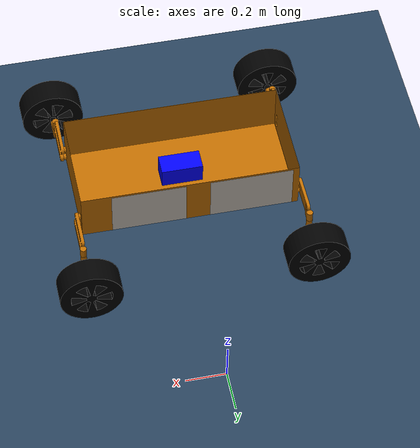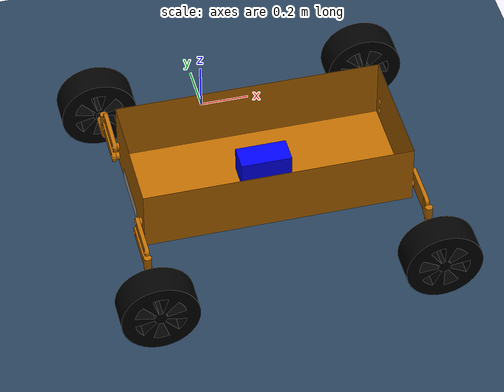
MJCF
<mujoco model="spaceroverMCL_scene">

  <include file="spaceroverMCL.xml"/>

  <statistic center="0 0 0.1" extent="0.8"/>

  <asset>
    <texture type="skybox" builtin="gradient" rgb1="0.3 0.5 0.7" rgb2="0 0 0" width="512" height="3072"/>
    <texture type="2d" name="groundplane" builtin="checker" mark="edge" rgb1="0.2 0.3 0.4" rgb2="0.1 0.2 0.3" markrgb="0.8 0.8 0.8" width="300" height="300"/>
    <material name="groundplane" texture="groundplane" texuniform="true" texrepeat="5 5" reflectance="0.2"/>
  </asset>

  <worldbody>
    <light pos="0 0 1.5" dir="0 0 -1" directional="true"/>
    <geom name="floor" size="0 0 0.05" type="plane" material="groundplane"/>
  </worldbody>
</mujoco>

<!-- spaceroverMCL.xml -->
<mujoco model="spaceroverMCL">
  <compiler angle="radian" meshdir="assets/meshes/" />

  <option timestep="0.0001" integrator="RK4" gravity = "0 0 -9.81" cone="elliptic" impratio="100">
    <flag sensornoise="enable" energy="enable" contact="enable" />
  </option>

  <default>
    <default class="spaceroverMCL">
      <geom friction="0.6" margin="0.001" condim="1"/>
      <joint axis="0 0 -1" armature="0.1" damping="2" stiffness="0" frictionloss="1"/>

      <default class="sus_joint">
        <joint range="-1.0472 1.0472"/>
      </default>

      <default class="steer_joint">
        <joint range="-1.0472 1.0472"/>
      </default>

      <default class="visual">
        <geom type="mesh" contype="0" conaffinity="0" group="2"/>
      </default>

      <default class= "collision">
        <geom group="3" priority="1" solimp="0.015 1 0.031" condim="6" friction="0.8 0.02 0.01"/>
      </default>

    </default>
  </default>

  <asset>
    <mesh name="trunk" file="base_link.STL"/>
    <mesh name="FL_bot_sus_bar" file="FL_bot_sus_bar.STL"/>
    <mesh name="FL_sus_cover" file="FL_sus_cover.STL"/>
    <mesh name="FL_steer_link" file="FL_steer_link.STL"/>
    <mesh name="FL_wheel" file="FL_wheel.STL"/>
    <mesh name="FR_bot_sus_bar" file="FR_bot_sus_bar.STL"/>
    <mesh name="FR_sus_cover" file="FR_sus_cover.STL"/>
    <mesh name="FR_steer_link" file="FR_steer_link.STL"/>
    <mesh name="FR_wheel" file="FR_wheel.STL"/>
    <mesh name="RL_bot_sus_bar" file="RL_bot_sus_bar.STL"/>
    <mesh name="RL_sus_cover" file="RL_sus_cover.STL"/>
    <mesh name="RL_steer_link" file="RL_steer_link.STL"/>
    <mesh name="RL_wheel" file="RL_wheel.STL"/>
    <mesh name="RR_bot_sus_bar" file="RR_bot_sus_bar.STL"/>
    <mesh name="RR_sus_cover" file="RR_sus_cover.STL"/>
    <mesh name="RR_steer_link" file="RR_steer_link.STL"/>
    <mesh name="RR_wheel" file="RR_wheel.STL"/>

    <texture name="Dgist" type="2d" file="Dgist_Logo.png"/>
    <texture name="Mcl" type="2d" file="Mcl_Logo.png"/>
    <texture name="Car_num" type="2d" file="Car_num.png"/>

    <material name="Dgist_Mark" texture="Dgist" reflectance="0.2" shininess="0.1"/>
    <material name="Mcl_Mark" texture="Mcl" reflectance="0.2" shininess="0.1"/>
    <material name="Car_num_Mark" texture="Car_num" reflectance="0.2" shininess="0.1"/>

  </asset>

  <worldbody>
    <light diffuse=".5 .5 .5" pos="0 0 3" dir="0 0 -1"/>
    <body name="trunk" pos="0 0.2 0.5" euler="0 0 0">
      <inertial pos="0.04735 -1.09 -0.0080492" euler="0 0 0" mass="1.3351" diaginertia="0.05797 0.17656 0.216789"/>
      <freejoint/>
      <site type="box" name="imu" pos="0.04735 -1.09 -0.0080492" size="0.1 0.05 0.05" rgba="0 0 1 1" />

      <geom class="visual" mesh="trunk" rgba="0.7373 0.4196 0 1" />
      <geom class="visual" type="box" pos="0.24735 -0.838 0.04" size="0.18 0.12 0.00000001" euler="1.571 3.1416 0" material="Dgist_Mark" />
      <geom class="visual" type="box" pos="-0.24735 -0.838 0.04" size="0.2 0.12 0.00000001" euler="1.571 3.1416 0" material="Mcl_Mark" />
      <geom class="visual" type="box" pos="-0.48 -1.09 -0.05" size="0.12 0.03 0.00000001" euler="1.571 4.7124 0" material="Car_num_Mark" />

      <geom type="box" pos="0.04735 -1.09 0.018" size="0.525 0.25 0.1" class="collision"/>

      <body name="FL_bot_sus_bar" pos="0.587 -0.88 -0.0422" quat="0.499998 -0.5 0.500002 -0.5">
        <inertial pos="-0.0800444 -0.027786 0.005" quat="-0.0123149 0.707 0.0123149 0.707" mass="0.187288" diaginertia="0.000459009 0.000435537 3.04959e-05"/>
        <joint name="FL_sus_act" pos="0 0 0" axis="0 0 1"/>
        <geom class="visual" rgba="0.7373 0.4196 0 1" mesh="FL_bot_sus_bar"/>
        <geom type="capsule" pos="-0.06 0 0.015" euler="0 1.5708 0" size="0.02 0.09" class="collision"/>

        <body name="FL_sus_cover" pos="-0.16 0 0.005">
          <inertial pos="-0.019418 -0.0242697 -0.00192197" quat="0.509544 0.49027 -0.509544 0.49027" mass="0.0574115" diaginertia="2.10642e-05 1.97255e-05 5.68259e-06"/>
          <joint name="FL_sus_link_joint" pos="0 0 0" axis="0 0 1"/>
          <geom class="visual" rgba="0.7373 0.4196 0 1" mesh="FL_sus_cover"/>

          <body name="FL_steer_link" pos="-0.03 0 0" quat="0.707176 0.707037 0 0">
            <inertial pos="-0.0239659 -4.9413e-09 -0.0410337" quat="0.581915 0.401715 0.401715 0.581915" mass="0.0918925" diaginertia="9.50909e-05 8.25005e-05 2.29282e-05"/>
            <joint name="FL_steer_rev" pos="0 0 0" axis="0 0 1"/>
            <geom class="visual" rgba="0.7373 0.4196 0 1" mesh="FL_steer_link"/>
            <geom type="cylinder" pos="0.00001 0 -0.001" size="0.015 0.06" class="collision"/>

            <body name="FL_wheel" pos="-0.080193 0 -0.04969" quat="0.499022 0.500974 -0.500976 -0.499024">
              <inertial pos="0 0 0.0823537" quat="0.5 0.5 -0.5 0.5" mass="6.43656" diaginertia="0.084475 0.0499813 0.0499813"/>
              <joint name="FL_drive_act" pos="0 0 0" axis="0 0 1"/>
              <geom class="visual" rgba="0. 0. 0. 1" mesh="FL_wheel"/>
              <geom type="cylinder" pos="0 0 0.0823537" size="0.15 0.06" class="collision"/>

              <site type="cylinder" name="end_point_FL" pos="0 0 0.0823537" euler="0 0 0.6981" size="0.15 0.06" rgba="0 0 1 0" />

            </body>
          </body>
        </body>
      </body>

      <body name="FR_bot_sus_bar" pos="0.587 -1.3 -0.0422" quat="0.499998 -0.5 0.500002 -0.5">
        <inertial pos="0.0799943 -0.026068 0.005" quat="0.00472016 0.707091 -0.00472016 0.707091" mass="0.187288" diaginertia="0.000459009 0.000435537 3.04959e-05"/>
        <joint name="FR_sus_act" pos="0 0 0" axis="0 0 -1"/>
        <geom class="visual" rgba="0.7373 0.4196 0 1" mesh="FR_bot_sus_bar"/>
        <geom type="capsule" pos="0.06 0 0.015" euler="0 1.5708 0" size="0.02 0.09" class="collision"/>

        <body name="FR_sus_cover" pos="0.16 0 0.005">
          <inertial pos="0.0184682 -0.025 -0.00192197" quat="0.5 0.5 -0.5 0.5" mass="0.0574115" diaginertia="2.10642e-05 1.97255e-05 5.68259e-06"/>
          <joint name="FR_sus_link_joint" pos="0 0 0" axis="0 0 -1"/>
          <geom class="visual" rgba="0.7373 0.4196 0 1" mesh="FR_sus_cover"/>

          <body name="FR_steer_link" pos="0.03 0 0" quat="0.707176 0.707037 0 0">
            <inertial pos="0.0239659 8.55307e-10 -0.0410337" quat="0.401715 0.581915 0.581915 0.401715" mass="0.0918925" diaginertia="9.50909e-05 8.25005e-05 2.29282e-05"/>
            <joint name="FR_steer_rev" pos="0 0 0" axis="0 0 1"/>
            <geom class="visual" rgba="0.7373 0.4196 0 1" mesh="FR_steer_link"/>
            <geom type="cylinder" pos="0.00001 0 -0.001" size="0.015 0.06" class="collision"/>

            <body name="FR_wheel" pos="0.08 0 -0.05" quat="0.499022 0.500974 -0.500976 -0.499024">
              <inertial pos="-0.000819113 -0.000732501 -0.0823463" quat="0.504688 0.500263 -0.495267 0.499737" mass="6.43656" diaginertia="0.084475 0.0499813 0.0499813"/>
              <joint name="FR_drive_act" pos="0 0 0" axis="0 0 1"/>
              <geom class="visual" rgba="0. 0. 0. 1" mesh="FR_wheel"/>
              <geom type="cylinder" pos="0 0 -0.0823537" size="0.15 0.06" class="collision"/>

              <site type="cylinder" name="end_point_FR" pos="0 0 -0.0823537" size="0.15 0.06" rgba="0 0 1 0" />

            </body>
          </body>
        </body>
      </body>

      <body name="RL_bot_sus_bar" pos="-0.493 -0.88 -0.0422" quat="0.499998 -0.5 0.500002 -0.5">
        <inertial pos="-0.0808662 -0.0252948 -0.005" quat="-0.00136913 0.707105 0.00136913 0.707105" mass="0.187288" diaginertia="0.000459009 0.000435537 3.04959e-05"/>
        <joint name="RL_sus_act" pos="0 0 0" axis="0 0 1"/>
        <geom class="visual" rgba="0.7373 0.4196 0 1" mesh="RL_bot_sus_bar"/>
        <geom type="capsule" pos="-0.06 0 -0.015" euler="0 1.5708 0" size="0.02 0.09" class="collision"/>

        <body name="RL_sus_cover" pos="-0.16 0 -0.005">
          <inertial pos="-0.0184682 -0.025 0.00192197" quat="0.5 0.5 -0.5 0.5" mass="0.0574115" diaginertia="2.10642e-05 1.97255e-05 5.68259e-06"/>
          <joint name="RL_sus_link_joint" pos="0 0 0" axis="0 0 1"/>
          <geom type="mesh" rgba="0.7373 0.4196 0 1" mesh="RL_sus_cover"/>

          <body name="RL_steer_link" pos="-0.03 0 0" quat="0.707176 0.707037 0 0">
            <inertial pos="-0.0241244 -8.55307e-10 -0.0409407" quat="0.402839 0.581137 0.581137 0.402839" mass="0.0918925" diaginertia="9.50909e-05 8.25005e-05 2.29282e-05"/>
            <joint name="RL_steer_rev" pos="0 0 0" axis="0 0 1"/>
            <geom class="visual" rgba="0.7373 0.4196 0 1" mesh="RL_steer_link"/>
            <geom type="cylinder" pos="0.00001 0 -0.001" size="0.015 0.06" class="collision"/>

            <body name="RL_wheel" pos="-0.0802 0 -0.05" quat="0.499022 0.500974 -0.500976 -0.499024">
              <inertial pos="0 0 0.0823537" quat="0.5 0.5 -0.5 0.5" mass="6.43656" diaginertia="0.084475 0.0499813 0.0499813"/>
              <joint name="RL_drive_act" pos="0 0 0" axis="0 0 1"/>
              <geom class="visual" rgba="0. 0. 0. 1" mesh="RL_wheel"/>
              <geom type="cylinder" pos="0 0 0.0823537" size="0.15 0.06" class="collision"/>

              <site type="cylinder" name="end_point_RL" pos="0 0 0.0823537" size="0.15 0.06" rgba="0 0 1 0" />

            </body>
          </body>
        </body>
      </body>

      <body name="RR_bot_sus_bar" pos="-0.493 -1.3 -0.0422" quat="0.499998 -0.5 0.500002 -0.5">
        <inertial pos="0.0808662 -0.0252948 -0.005" quat="0.00136913 0.707105 -0.00136913 0.707105" mass="0.187288" diaginertia="0.000459009 0.000435537 3.04959e-05"/>
        <joint name="RR_sus_act" pos="0 0 0" axis="0 0 -1"/>
        <geom class="visual" rgba="0.7373 0.4196 0 1" mesh="RR_bot_sus_bar"/>
        <geom type="capsule" pos="0.06 0 -0.015" euler="0 1.5708 0" size="0.02 0.09" class="collision"/>

        <body name="RR_sus_cover" pos="0.16 0 -0.005">
          <inertial pos="0.0184682 -0.025 0.00192197" quat="0.5 0.5 -0.5 0.5" mass="0.0574115" diaginertia="2.10642e-05 1.97255e-05 5.68259e-06"/>
          <joint name="RR_sus_link_joint" pos="0 0 0" axis="0 0 -1"/>
          <geom class="visual" rgba="0.7373 0.4196 0 1" mesh="RR_sus_cover"/>

          <body name="RR_steer_link" pos="0.03 0 0" quat="0.707176 0.707037 0 0">
            <inertial pos="0.0241244 4.9413e-09 -0.0409407" quat="0.402839 0.581137 0.581137 0.402839" mass="0.0918925" diaginertia="9.50909e-05 8.25005e-05 2.29282e-05"/>
            <joint name="RR_steer_rev" pos="0 0 0" axis="0 0 1"/>
            <geom class="visual" rgba="0.7373 0.4196 0 1" mesh="RR_steer_link"/>
            <geom type="cylinder" pos="0.00001 0 -0.001" size="0.015 0.06" class="collision"/>

            <body name="RR_wheel" pos="0.0802 0 -0.05" quat="0.499022 0.500974 -0.500976 -0.499024">
              <inertial pos="0 0 -0.0823537" quat="0.5 0.5 -0.5 0.5" mass="6.43656" diaginertia="0.084475 0.0499813 0.0499813"/>
              <joint name="RR_drive_act" pos="0 0 0" axis="0 0 1"/>
              <geom class="visual" rgba="0. 0. 0. 1" mesh="RR_wheel"/>
              <geom type="cylinder" pos="0 0 -0.0823537" size="0.15 0.06" class="collision"/>

              <site type="cylinder" name="end_point_RR" pos="0 0 -0.0823537" size="0.15 0.06" rgba="0 0 1 0" />

            </body>
          </body>
        </body>
      </body>
    </body>
  </worldbody>

  <actuator>
    <motor name="FL_sus_motor" joint="FL_sus_act" gear="1" ctrlrange="-100 100" />
    <motor name="FL_steer_motor" joint="FL_steer_rev" gear="1" ctrlrange="-100 100" />
    <motor name="FL_drive_motor" joint="FL_drive_act" gear="1" ctrlrange="-100 100" />
    <motor name="FR_sus_motor" joint="FR_sus_act" gear="1" ctrlrange="-100 100" />
    <motor name="FR_steer_motor" joint="FR_steer_rev" gear="1" ctrlrange="-100 100" />
    <motor name="FR_drive_motor" joint="FR_drive_act" gear="1" ctrlrange="-100 100" />
    <motor name="RL_sus_motor" joint="RL_sus_act" gear="1" ctrlrange="-100 100" />
    <motor name="RL_steer_motor" joint="RL_steer_rev" gear="1" ctrlrange="-100 100" />
    <motor name="RL_drive_motor" joint="RL_drive_act" gear="1" ctrlrange="-100 100" />
    <motor name="RR_sus_motor" joint="RR_sus_act" gear="1" ctrlrange="-100 100" />
    <motor name="RR_steer_motor" joint="RR_steer_rev" gear="1" ctrlrange="-100 100" />
    <motor name="RR_drive_motor" joint="RR_drive_act" gear="1" ctrlrange="-100 100" />
  </actuator>

  <sensor>
    <accelerometer site="imu" name="imu_acc" noise="0.0" />
    <gyro site="imu" name="imu_gyro" noise="0.0" />
    <framelinvel name="trunk_vel" objtype="site" objname="imu" />
    <frameangvel name="trunk_angvel" objtype="site" objname="imu" />
    <framepos name="trunk_pos" objtype="site" objname="imu" />
    <framequat name="trunk_ang" objtype="site" objname="imu" />

    <jointpos joint="FL_sus_act" name="ENC_FL_sus" noise="0.0" />
    <jointpos joint="FL_steer_rev" name="ENC_FL_steer" noise="0.0" />
    <jointpos joint="FL_drive_act" name="ENC_FL_drive" noise="0.0" />

    <jointpos joint="FR_sus_act" name="ENC_FR_sus" noise="0.0" />
    <jointpos joint="FR_steer_rev" name="ENC_FR_steer" noise="0.0" />
    <jointpos joint="FR_drive_act" name="ENC_FR_drive" noise="0.0" />

    <jointpos joint="RL_sus_act" name="ENC_RL_sus" noise="0.0" />
    <jointpos joint="RL_steer_rev" name="ENC_RL_steer" noise="0.0" />
    <jointpos joint="RL_drive_act" name="ENC_RL_drive" noise="0.0" />

    <jointpos joint="RR_sus_act" name="ENC_RR_sus" noise="0.0" />
    <jointpos joint="RR_steer_rev" name="ENC_RR_steer" noise="0.0" />
    <jointpos joint="RR_drive_act" name="ENC_RR_drive" noise="0.0" />

    <touch name="touch_sensor_FL" site="end_point_FL" />
    <force name="grf_seonsor_FL" site="end_point_FL" />

    <touch name="touch_FR" site="end_point_FR" />
    <force name="grf_seonsor_FR" site="end_point_FR" />

    <touch name="touch_RL" site="end_point_RL" />
    <force name="grf_seonsor_RL" site="end_point_RL" />

    <touch name="touch_RR" site="end_point_RR" />
    <force name="grf_seonsor_RR" site="end_point_RR" />

  </sensor>

  <keyframe>
    <key name="home" qpos="0 0 0.5 0 0 0 0 0 0 0 0 0 0 0 0 0 0 0 0 0 0 0 0"/>
  </keyframe>

</mujoco>
